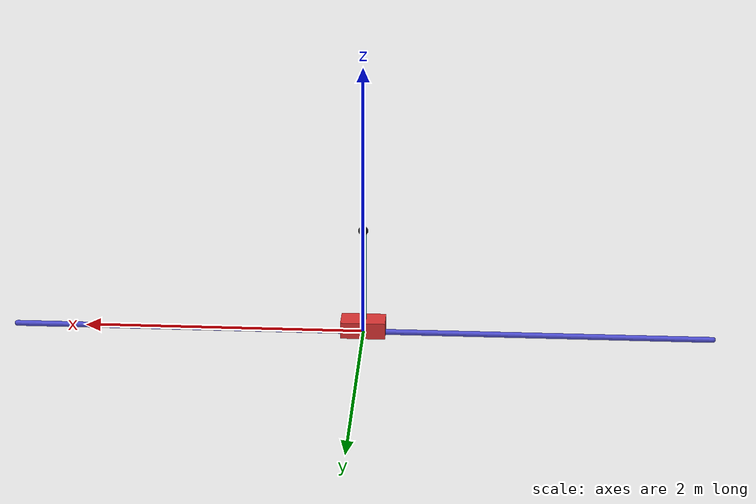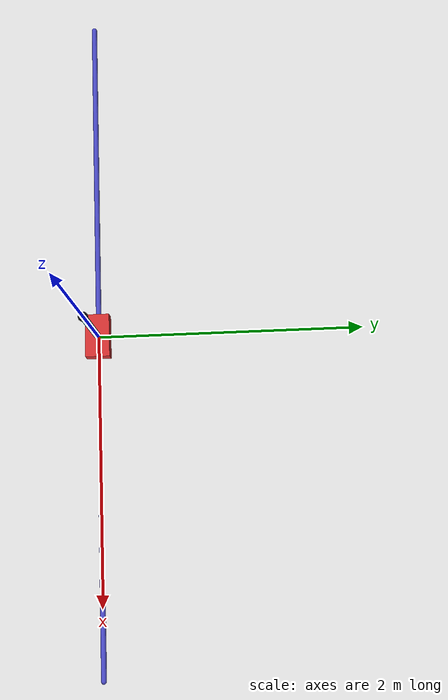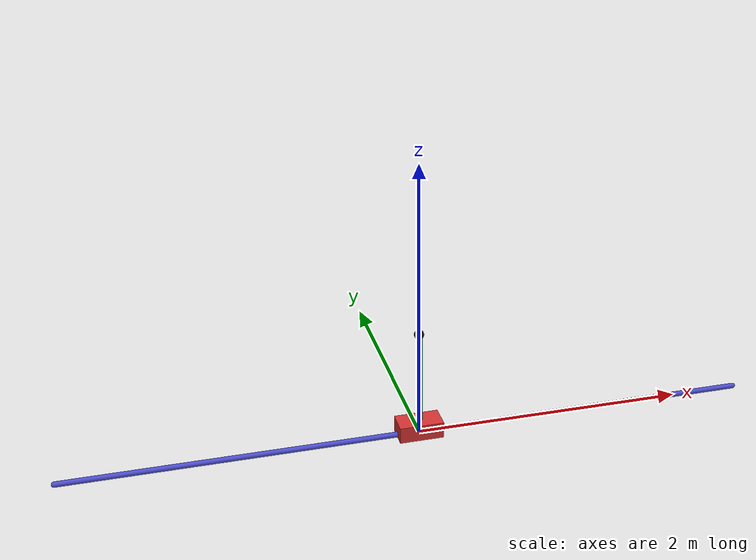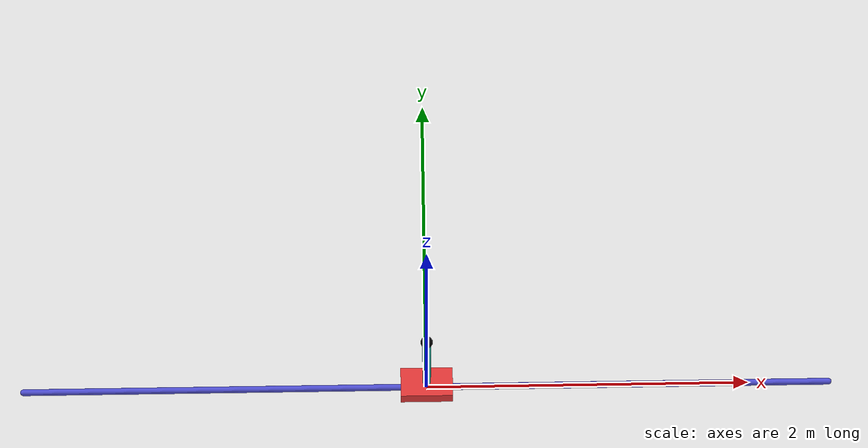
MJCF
<mujoco model="cartpole swingup">
  <compiler angle="radian" inertiafromgeom="true"/>

  <option gravity="0 0 -9.81" integrator="RK4" timestep="0.02"/>

  <default>
    <joint armature="0" damping="0.02" limited="false"/>
    <geom conaffinity="0" contype="0" friction="1 0.1 0.1" rgba="0.7 0.7 0.7 1"/>
  </default>

  <worldbody>
    <light diffuse="0.8 0.8 0.8" dir="0 0 -1" pos="0 0 4"/>
    <camera name="track" mode="trackcom" pos="0 -4 1.2" xyaxes="1 0 0 0 0.25 1"/>

    <geom name="rail" type="capsule" fromto="-2.5 0 0 2.5 0 0" size="0.02" rgba="0.3 0.3 0.8 1"/>

    <body name="cart" pos="0 0 0">
      <joint axis="1 0 0" damping="0.1" limited="true" name="slider" range="-2.4 2.4" type="slide"/>
      <geom name="cart" type="box" mass="1.0" pos="0 0 0.04" size="0.16 0.09 0.06" rgba="0.85 0.2 0.2 1"/>

      <body name="pole" pos="0 0 0.08">
        <joint axis="0 1 0" damping="0.01" limited="false" name="hinge" type="hinge"/>
        <geom name="pole" type="capsule" fromto="0 0 0 0 0 0.7" mass="0.12" size="0.025" rgba="0.1 0.75 0.65 1"/>
        <site name="tip" pos="0 0 0.7" size="0.035" rgba="0.05 0.05 0.05 1"/>
      </body>
    </body>
  </worldbody>

  <actuator>
    <motor ctrllimited="true" ctrlrange="-10 10" gear="1" joint="slider" name="cart_force"/>
  </actuator>
</mujoco>
